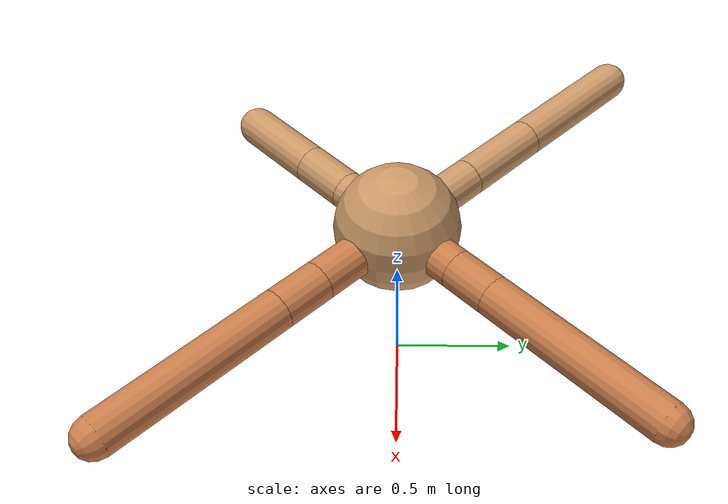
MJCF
<mujoco model="ant">
  <compiler angle="degree" coordinate="local" inertiafromgeom="true" />
  <option integrator="RK4" timestep="0.01" />
  <custom>
    <numeric data="0.0 0.0 0.55 1.0 0.0 0.0 0.0 0.0 1.0 0.0 -1.0 0.0 -1.0 0.0 1.0" name="init_qpos" />
  </custom>
  <default>
    <joint armature="1" damping="1" limited="true" />
    <geom conaffinity="0" condim="3" density="5.0" friction="1.5 0.1 0.1" margin="0.01" rgba="0.8 0.6 0.4 1" />
  </default>
  <worldbody>
    <body name="torso" pos="0 0 0.75">
      <geom name="torso_geom" pos="0 0 0" size="0.25" type="sphere" />

      <body name="front_left_leg" pos="0 0 0">
        <geom fromto="0.0 0.0 0.0 0.22262841230292754 0.22262841230292754 0.0" name="aux_1_geom" size="0.08" type="capsule" rgba=".8 .5 .3 1" />
        <body name="aux_1" pos="0.22262841230292754 0.22262841230292754 0.0">
          <joint axis="0 0 1" name="hip_1" pos="0.0 0.0 0.0" range="-40 40" type="hinge" />
          <geom fromto="0.0 0.0 0.0 0.1267993801865863 0.1267993801865863 0.0" name="left_leg_geom" size="0.08" type="capsule" rgba=".8 .5 .3 1" />
          <body pos="0.1267993801865863 0.1267993801865863 0.0" name="front_left_foot">
            <joint axis="-1 1 0" name="ankle_1" pos="0.0 0.0 0.0" range="30 100" type="hinge" />
            <geom fromto="0.0 0.0 0.0 0.5359116679917992 0.5359116679917992 0.0" name="left_ankle_geom" size="0.08" type="capsule" rgba=".8 .5 .3 1" />
          </body>
        </body>
      </body>
      <body name="front_right_leg" pos="0 0 0">
        <geom fromto="0.0 0.0 0.0 -0.2844232766671576 0.2844232766671576 0.0" name="aux_2_geom" size="0.08" type="capsule" />
        <body name="aux_2" pos="-0.2844232766671576 0.2844232766671576 0.0">
          <joint axis="0 0 1" name="hip_2" pos="0.0 0.0 0.0" range="-40 40" type="hinge" />
          <geom fromto="0.0 0.0 0.0 -0.25370515256442366 0.25370515256442366 0.0" name="right_leg_geom" size="0.08" type="capsule" />
          <body pos="-0.25370515256442366 0.25370515256442366 0.0" name="front_right_foot">
            <joint axis="1 1 0" name="ankle_2" pos="0.0 0.0 0.0" range="-100 -30" type="hinge" />
            <geom fromto="0.0 0.0 0.0 -0.41021488523073046 0.41021488523073046 0.0" name="right_ankle_geom" size="0.08" type="capsule" />
          </body>
        </body>
      </body>
      <body name="left_back_leg" pos="0 0 0">
        <geom fromto="0.0 0.0 0.0 -0.20340785445388854 -0.20340785445388854 0.0" name="aux_3_geom" size="0.08" type="capsule" />
        <body name="aux_3" pos="-0.20340785445388854 -0.20340785445388854 0.0">
          <joint axis="0 0 1" name="hip_3" pos="0.0 0.0 0.0" range="-40 40" type="hinge" />
          <geom fromto="0.0 0.0 0.0 -0.1549326027662347 -0.1549326027662347 0.0" name="back_leg_geom" size="0.08" type="capsule" />
          <body pos="-0.1549326027662347 -0.1549326027662347 0.0" name="left_back_foot">
            <joint axis="-1 1 0" name="ankle_3" pos="0.0 0.0 0.0" range="-100 -30" type="hinge" />
            <geom fromto="0.0 0.0 0.0 -0.24705127824248715 -0.24705127824248715 0.0" name="third_ankle_geom" size="0.08" type="capsule" />
          </body>
        </body>
      </body>
      <body name="right_back_leg" pos="0 0 0">
        <geom fromto="0.0 0.0 0.0 0.2858538632747022 -0.2858538632747022 0.0" name="aux_4_geom" size="0.08" type="capsule" rgba=".8 .5 .3 1" />
        <body name="aux_4" pos="0.2858538632747022 -0.2858538632747022 0.0">
          <joint axis="0 0 1" name="hip_4" pos="0.0 0.0 0.0" range="-40 40" type="hinge" />
          <geom fromto="0.0 0.0 0.0 0.13595201849570399 -0.13595201849570399 0.0" name="rightback_leg_geom" size="0.08" type="capsule" rgba=".8 .5 .3 1" />
          <body pos="0.13595201849570399 -0.13595201849570399 0.0" name="right_back_foot">
            <joint axis="1 1 0" name="ankle_4" pos="0.0 0.0 0.0" range="30 100" type="hinge" />
            <geom fromto="0.0 0.0 0.0 0.5360349588824781 -0.5360349588824781 0.0" name="fourth_ankle_geom" size="0.08" type="capsule" rgba=".8 .5 .3 1" />
          </body>
        </body>
      </body>
    </body>
  </worldbody>
  <actuator>
    <motor ctrllimited="true" ctrlrange="-1.0 1.0" joint="hip_4" gear="150" />
    <motor ctrllimited="true" ctrlrange="-1.0 1.0" joint="ankle_4" gear="150" />
    <motor ctrllimited="true" ctrlrange="-1.0 1.0" joint="hip_1" gear="150" />
    <motor ctrllimited="true" ctrlrange="-1.0 1.0" joint="ankle_1" gear="150" />
    <motor ctrllimited="true" ctrlrange="-1.0 1.0" joint="hip_2" gear="150" />
    <motor ctrllimited="true" ctrlrange="-1.0 1.0" joint="ankle_2" gear="150" />
    <motor ctrllimited="true" ctrlrange="-1.0 1.0" joint="hip_3" gear="150" />
    <motor ctrllimited="true" ctrlrange="-1.0 1.0" joint="ankle_3" gear="150" />
  </actuator>
</mujoco>
